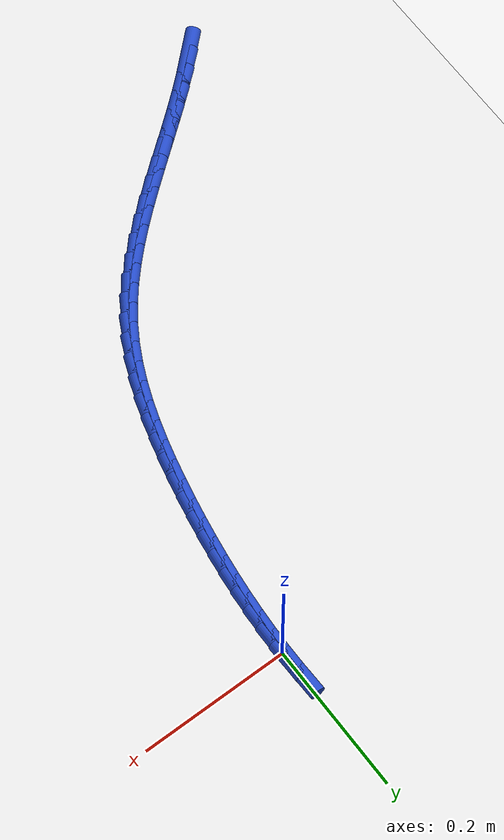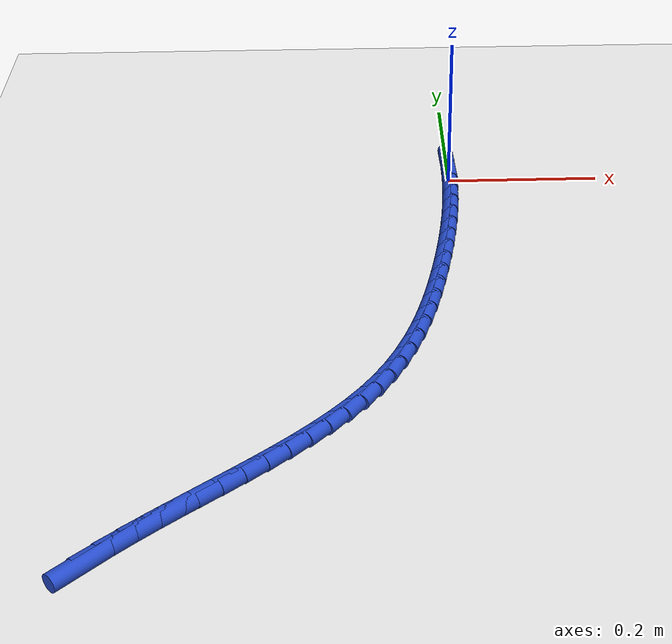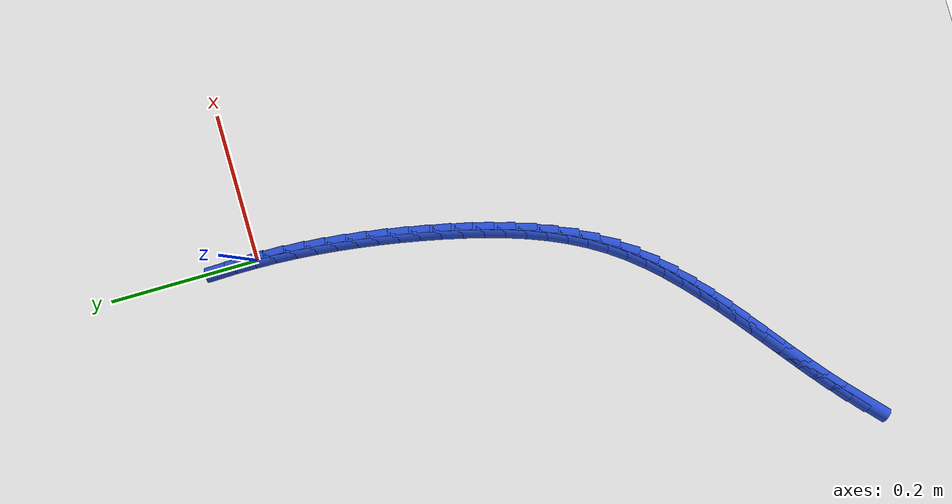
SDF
<sdf version="1.6">
 <world name="default">
  <model name="ground_plane">
   <static>1</static>
   <link name="link">
    <collision name="collision">
     <geometry><plane><normal>0 0 1</normal><size>100 100</size></plane></geometry>
     <surface><friction><ode><mu>100</mu><mu2>50</mu2></ode></friction></surface>
    </collision>
    <visual name="visual">
     <cast_shadows>0</cast_shadows>
     <geometry><plane><normal>0 0 1</normal><size>100 100</size></plane></geometry>
     <material>
      <script><uri>file://media/materials/scripts/gazebo.material</uri><name>Gazebo/WhiteGlow</name></script>
     </material>
    </visual>
   </link>
  </model>
  <model name="line">
   <link name="link_0">
    <pose>3.469446951953614e-18 4.163336342344337e-17 0.01 0 1.57 1.5686046677415935</pose>
    <collision name="collision">
     <geometry><cylinder><radius>0.01</radius><length>0.08</length></cylinder></geometry>
    </collision>
    <visual name="visual">
     <material>
      <script><name>Gazebo/Blue</name><uri>file://media/materials/scripts/gazebo.material</uri></script>
     </material>
     <geometry><cylinder><radius>0.01</radius><length>0.08</length></cylinder></geometry>
    </visual>
   </link>
   <link name="link_1">
    <pose>5.986512938867445e-05 0.027314939085516483 0.01 0 1.57 -1.5446424900478535</pose>
    <collision name="collision">
     <geometry><cylinder><radius>0.01</radius><length>0.08</length></cylinder></geometry>
    </collision>
    <visual name="visual">
     <material>
      <script><name>Gazebo/Blue</name><uri>file://media/materials/scripts/gazebo.material</uri></script>
     </material>
     <geometry><cylinder><radius>0.01</radius><length>0.08</length></cylinder></geometry>
    </visual>
   </link>
   <link name="link_239">
    <pose>-0.39065218091034803 -0.7117710341909513 0.01 0 1.57 0.7491343088224107</pose>
    <collision name="collision">
     <geometry><cylinder><radius>0.01</radius><length>0.08</length></cylinder></geometry>
    </collision>
    <visual name="visual">
     <material>
      <script><name>Gazebo/Blue</name><uri>file://media/materials/scripts/gazebo.material</uri></script>
     </material>
     <geometry><cylinder><radius>0.01</radius><length>0.08</length></cylinder></geometry>
    </visual>
   </link>
   <link name="link_240">
    <pose>-0.3710191961113675 -0.6935127360217694 0.01 0 1.57 0.7182236447536012</pose>
    <collision name="collision">
     <geometry><cylinder><radius>0.01</radius><length>0.08</length></cylinder></geometry>
    </collision>
    <visual name="visual">
     <material>
      <script><name>Gazebo/Blue</name><uri>file://media/materials/scripts/gazebo.material</uri></script>
     </material>
     <geometry><cylinder><radius>0.01</radius><length>0.08</length></cylinder></geometry>
    </visual>
   </link>
   <link name="link_241">
    <pose>-0.3506068581167566 -0.6756737820441842 0.01 0 1.57 0.6936233526174795</pose>
    <collision name="collision">
     <geometry><cylinder><radius>0.01</radius><length>0.08</length></cylinder></geometry>
    </collision>
    <visual name="visual">
     <material>
      <script><name>Gazebo/Blue</name><uri>file://media/materials/scripts/gazebo.material</uri></script>
     </material>
     <geometry><cylinder><radius>0.01</radius><length>0.08</length></cylinder></geometry>
    </visual>
   </link>
   <link name="link_242">
    <pose>-0.3295159666706042 -0.6581378466109801 0.01 0 1.57 0.6772759400904336</pose>
    <collision name="collision">
     <geometry><cylinder><radius>0.01</radius><length>0.08</length></cylinder></geometry>
    </collision>
    <visual name="visual">
     <material>
      <script><name>Gazebo/Blue</name><uri>file://media/materials/scripts/gazebo.material</uri></script>
     </material>
     <geometry><cylinder><radius>0.01</radius><length>0.08</length></cylinder></geometry>
    </visual>
   </link>
   <link name="link_243">
    <pose>-0.307939118586207 -0.6407864821495343 0.01 0 1.57 0.6688574194247194</pose>
    <collision name="collision">
     <geometry><cylinder><radius>0.01</radius><length>0.08</length></cylinder></geometry>
    </collision>
    <visual name="visual">
     <material>
      <script><name>Gazebo/Blue</name><uri>file://media/materials/scripts/gazebo.material</uri></script>
     </material>
     <geometry><cylinder><radius>0.01</radius><length>0.08</length></cylinder></geometry>
    </visual>
   </link>
   <link name="link_244">
    <pose>-0.28607000016990086 -0.6235012159031608 0.01 0 1.57 0.668141272821662</pose>
    <collision name="collision">
     <geometry><cylinder><radius>0.01</radius><length>0.08</length></cylinder></geometry>
    </collision>
    <visual name="visual">
     <material>
      <script><name>Gazebo/Blue</name><uri>file://media/materials/scripts/gazebo.material</uri></script>
     </material>
     <geometry><cylinder><radius>0.01</radius><length>0.08</length></cylinder></geometry>
    </visual>
   </link>
   <link name="link_245">
    <pose>-0.26410229772802446 -0.6061635751151759 0.01 0 1.57 0.6750310239924663</pose>
    <collision name="collision">
     <geometry><cylinder><radius>0.01</radius><length>0.08</length></cylinder></geometry>
    </collision>
    <visual name="visual">
     <material>
      <script><name>Gazebo/Blue</name><uri>file://media/materials/scripts/gazebo.material</uri></script>
     </material>
     <geometry><cylinder><radius>0.01</radius><length>0.08</length></cylinder></geometry>
    </visual>
   </link>
   <link name="link_246">
    <pose>-0.24222969756691431 -0.5886550870288944 0.01 0 1.57 0.6895563960635924</pose>
    <collision name="collision">
     <geometry><cylinder><radius>0.01</radius><length>0.08</length></cylinder></geometry>
    </collision>
    <visual name="visual">
     <material>
      <script><name>Gazebo/Blue</name><uri>file://media/materials/scripts/gazebo.material</uri></script>
     </material>
     <geometry><cylinder><radius>0.01</radius><length>0.08</length></cylinder></geometry>
    </visual>
   </link>
   <link name="link_247">
    <pose>-0.22064588599290702 -0.5708572788876304 0.01 0 1.57 0.7118611678405202</pose>
    <collision name="collision">
     <geometry><cylinder><radius>0.01</radius><length>0.08</length></cylinder></geometry>
    </collision>
    <visual name="visual">
     <material>
      <script><name>Gazebo/Blue</name><uri>file://media/materials/scripts/gazebo.material</uri></script>
     </material>
     <geometry><cylinder><radius>0.01</radius><length>0.08</length></cylinder></geometry>
    </visual>
   </link>
   <link name="link_248">
    <pose>-0.19954454931234117 -0.5526516779347008 0.01 0 1.57 0.7421810424671849</pose>
    <collision name="collision">
     <geometry><cylinder><radius>0.01</radius><length>0.08</length></cylinder></geometry>
    </collision>
    <visual name="visual">
     <material>
      <script><name>Gazebo/Blue</name><uri>file://media/materials/scripts/gazebo.material</uri></script>
     </material>
     <geometry><cylinder><radius>0.01</radius><length>0.08</length></cylinder></geometry>
    </visual>
   </link>
   <link name="link_249">
    <pose>-0.17911937383155271 -0.5339198114134195 0.01 0 1.57 0.7808075391991679</pose>
    <collision name="collision">
     <geometry><cylinder><radius>0.01</radius><length>0.08</length></cylinder></geometry>
    </collision>
    <visual name="visual">
     <material>
      <script><name>Gazebo/Blue</name><uri>file://media/materials/scripts/gazebo.material</uri></script>
     </material>
     <geometry><cylinder><radius>0.01</radius><length>0.08</length></cylinder></geometry>
    </visual>
   </link>
   <link name="link_250">
    <pose>-0.15956404585688014 -0.5145432065671028 0.01 0 1.57 0.8280322426901585</pose>
    <collision name="collision">
     <geometry><cylinder><radius>0.01</radius><length>0.08</length></cylinder></geometry>
    </collision>
    <visual name="visual">
     <material>
      <script><name>Gazebo/Blue</name><uri>file://media/materials/scripts/gazebo.material</uri></script>
     </material>
     <geometry><cylinder><radius>0.01</radius><length>0.08</length></cylinder></geometry>
    </visual>
   </link>
   <link name="link_251">
    <pose>-0.14107225169465948 -0.4944033906390645 0.01 0 1.57 0.8840656025082396</pose>
    <collision name="collision">
     <geometry><cylinder><radius>0.01</radius><length>0.08</length></cylinder></geometry>
    </collision>
    <visual name="visual">
     <material>
      <script><name>Gazebo/Blue</name><uri>file://media/materials/scripts/gazebo.material</uri></script>
     </material>
     <geometry><cylinder><radius>0.01</radius><length>0.08</length></cylinder></geometry>
    </visual>
   </link>
   <link name="link_252">
    <pose>-0.12383767765122908 -0.4733818908726213 0.01 0 1.57 0.9489276221235671</pose>
    <collision name="collision">
     <geometry><cylinder><radius>0.01</radius><length>0.08</length></cylinder></geometry>
    </collision>
    <visual name="visual">
     <material>
      <script><name>Gazebo/Blue</name><uri>file://media/materials/scripts/gazebo.material</uri></script>
     </material>
     <geometry><cylinder><radius>0.01</radius><length>0.08</length></cylinder></geometry>
    </visual>
   </link>
   <link name="link_253">
    <pose>-0.10805401003292524 -0.4513602345110869 0.01 0 1.57 1.0205338090685836</pose>
    <collision name="collision">
     <geometry><cylinder><radius>0.01</radius><length>0.08</length></cylinder></geometry>
    </collision>
    <visual name="visual">
     <material>
      <script><name>Gazebo/Blue</name><uri>file://media/materials/scripts/gazebo.material</uri></script>
     </material>
     <geometry><cylinder><radius>0.01</radius><length>0.08</length></cylinder></geometry>
    </visual>
   </link>
   <link name="link_254">
    <pose>-0.09387643266827413 -0.4282496358397962 0.01 0 1.57 1.0883399657465809</pose>
    <collision name="collision">
     <geometry><cylinder><radius>0.01</radius><length>0.08</length></cylinder></geometry>
    </collision>
    <visual name="visual">
     <material>
      <script><name>Gazebo/Blue</name><uri>file://media/materials/scripts/gazebo.material</uri></script>
     </material>
     <geometry><cylinder><radius>0.01</radius><length>0.08</length></cylinder></geometry>
    </visual>
   </link>
   <link name="link_255">
    <pose>-0.08124329914649292 -0.4041284944472349 0.01 0 1.57 1.1486575966495882</pose>
    <collision name="collision">
     <geometry><cylinder><radius>0.01</radius><length>0.08</length></cylinder></geometry>
    </collision>
    <visual name="visual">
     <material>
      <script><name>Gazebo/Blue</name><uri>file://media/materials/scripts/gazebo.material</uri></script>
     </material>
     <geometry><cylinder><radius>0.01</radius><length>0.08</length></cylinder></geometry>
    </visual>
   </link>
   <link name="link_256">
    <pose>-0.07001712408915757 -0.379133684979784 0.01 0 1.57 1.2015916002075444</pose>
    <collision name="collision">
     <geometry><cylinder><radius>0.01</radius><length>0.08</length></cylinder></geometry>
    </collision>
    <visual name="visual">
     <material>
      <script><name>Gazebo/Blue</name><uri>file://media/materials/scripts/gazebo.material</uri></script>
     </material>
     <geometry><cylinder><radius>0.01</radius><length>0.08</length></cylinder></geometry>
    </visual>
   </link>
   <link name="link_257">
    <pose>-0.060060342040515226 -0.3534021438268345 0.01 0 1.57 1.2474114225496895</pose>
    <collision name="collision">
     <geometry><cylinder><radius>0.01</radius><length>0.08</length></cylinder></geometry>
    </collision>
    <visual name="visual">
     <material>
      <script><name>Gazebo/Blue</name><uri>file://media/materials/scripts/gazebo.material</uri></script>
     </material>
     <geometry><cylinder><radius>0.01</radius><length>0.08</length></cylinder></geometry>
    </visual>
   </link>
   <link name="link_258">
    <pose>-0.05123538754481328 -0.32707080737777805 0.01 0 1.57 1.2864616483616975</pose>
    <collision name="collision">
     <geometry><cylinder><radius>0.01</radius><length>0.08</length></cylinder></geometry>
    </collision>
    <visual name="visual">
     <material>
      <script><name>Gazebo/Blue</name><uri>file://media/materials/scripts/gazebo.material</uri></script>
     </material>
     <geometry><cylinder><radius>0.01</radius><length>0.08</length></cylinder></geometry>
    </visual>
   </link>
   <link name="link_259">
    <pose>-0.04340469514629982 -0.30027661202200834 0.01 0 1.57 1.319097668376893</pose>
    <collision name="collision">
     <geometry><cylinder><radius>0.01</radius><length>0.08</length></cylinder></geometry>
    </collision>
    <visual name="visual">
     <material>
      <script><name>Gazebo/Blue</name><uri>file://media/materials/scripts/gazebo.material</uri></script>
     </material>
     <geometry><cylinder><radius>0.01</radius><length>0.08</length></cylinder></geometry>
    </visual>
   </link>
   <link name="link_260">
    <pose>-0.03643069938922198 -0.2731564941489161 0.01 0 1.57 1.3456403359914586</pose>
    <collision name="collision">
     <geometry><cylinder><radius>0.01</radius><length>0.08</length></cylinder></geometry>
    </collision>
    <visual name="visual">
     <material>
      <script><name>Gazebo/Blue</name><uri>file://media/materials/scripts/gazebo.material</uri></script>
     </material>
     <geometry><cylinder><radius>0.01</radius><length>0.08</length></cylinder></geometry>
    </visual>
   </link>
   <link name="link_261">
    <pose>-0.03017583481782776 -0.2458473901478949 0.01 0 1.57 1.366443225201713</pose>
    <collision name="collision">
     <geometry><cylinder><radius>0.01</radius><length>0.08</length></cylinder></geometry>
    </collision>
    <visual name="visual">
     <material>
      <script><name>Gazebo/Blue</name><uri>file://media/materials/scripts/gazebo.material</uri></script>
     </material>
     <geometry><cylinder><radius>0.01</radius><length>0.08</length></cylinder></geometry>
    </visual>
   </link>
   <link name="link_262">
    <pose>-0.024504919098776615 -0.21848418634557568 0.01 0 1.57 1.384660761122475</pose>
    <collision name="collision">
     <geometry><cylinder><radius>0.01</radius><length>0.08</length></cylinder></geometry>
    </collision>
    <visual name="visual">
     <material>
      <script><name>Gazebo/Blue</name><uri>file://media/materials/scripts/gazebo.material</uri></script>
     </material>
     <geometry><cylinder><radius>0.01</radius><length>0.08</length></cylinder></geometry>
    </visual>
   </link>
   <link name="link_263">
    <pose>-0.019355445799634368 -0.19113925018277636 0.01 0 1.57 1.403803019445624</pose>
    <collision name="collision">
     <geometry><cylinder><radius>0.01</radius><length>0.08</length></cylinder></geometry>
    </collision>
    <visual name="visual">
     <material>
      <script><name>Gazebo/Blue</name><uri>file://media/materials/scripts/gazebo.material</uri></script>
     </material>
     <geometry><cylinder><radius>0.01</radius><length>0.08</length></cylinder></geometry>
    </visual>
   </link>
   <link name="link_264">
    <pose>-0.014749158980694817 -0.16381247326073844 0.01 0 1.57 1.424065348546519</pose>
    <collision name="collision">
     <geometry><cylinder><radius>0.01</radius><length>0.08</length></cylinder></geometry>
    </collision>
    <visual name="visual">
     <material>
      <script><name>Gazebo/Blue</name><uri>file://media/materials/scripts/gazebo.material</uri></script>
     </material>
     <geometry><cylinder><radius>0.01</radius><length>0.08</length></cylinder></geometry>
    </visual>
   </link>
   <link name="link_265">
    <pose>-0.010712516603541854 -0.13649969208331134 0.01 0 1.57 1.4454435558773935</pose>
    <collision name="collision">
     <geometry><cylinder><radius>0.01</radius><length>0.08</length></cylinder></geometry>
    </collision>
    <visual name="visual">
     <material>
      <script><name>Gazebo/Blue</name><uri>file://media/materials/scripts/gazebo.material</uri></script>
     </material>
     <geometry><cylinder><radius>0.01</radius><length>0.08</length></cylinder></geometry>
    </visual>
   </link>
   <link name="link_266">
    <pose>-0.007271976629758851 -0.10919674315434137 0.01 0 1.57 1.467927738123763</pose>
    <collision name="collision">
     <geometry><cylinder><radius>0.01</radius><length>0.08</length></cylinder></geometry>
    </collision>
    <visual name="visual">
     <material>
      <script><name>Gazebo/Blue</name><uri>file://media/materials/scripts/gazebo.material</uri></script>
     </material>
     <geometry><cylinder><radius>0.01</radius><length>0.08</length></cylinder></geometry>
    </visual>
   </link>
   <link name="link_267">
    <pose>-0.004453997020929623 -0.08189946297767797 0.01 0 1.57 1.4915015099555975</pose>
    <collision name="collision">
     <geometry><cylinder><radius>0.01</radius><length>0.08</length></cylinder></geometry>
    </collision>
    <visual name="visual">
     <material>
      <script><name>Gazebo/Blue</name><uri>file://media/materials/scripts/gazebo.material</uri></script>
     </material>
     <geometry><cylinder><radius>0.01</radius><length>0.08</length></cylinder></geometry>
    </visual>
   </link>
   <link name="link_268">
    <pose>-0.0022850357386376653 -0.05460368805716814 0.01 0 1.57 1.516141263321472</pose>
    <collision name="collision">
     <geometry><cylinder><radius>0.01</radius><length>0.08</length></cylinder></geometry>
    </collision>
    <visual name="visual">
     <material>
      <script><name>Gazebo/Blue</name><uri>file://media/materials/scripts/gazebo.material</uri></script>
     </material>
     <geometry><cylinder><radius>0.01</radius><length>0.08</length></cylinder></geometry>
    </visual>
   </link>
   <link name="link_269">
    <pose>-0.0007915507444665572 -0.02730525489665895 0.01 0 1.57 1.541815490316276</pose>
    <collision name="collision">
     <geometry><cylinder><radius>0.01</radius><length>0.08</length></cylinder></geometry>
    </collision>
    <visual name="visual">
     <material>
      <script><name>Gazebo/Blue</name><uri>file://media/materials/scripts/gazebo.material</uri></script>
     </material>
     <geometry><cylinder><radius>0.01</radius><length>0.08</length></cylinder></geometry>
    </visual>
   </link>
   <link name="link_270">
    <pose>6.5052130349130266e-18 1.5959455978986625e-16 0.01 0 1.57 1.568484206959448</pose>
    <collision name="collision">
     <geometry><cylinder><radius>0.01</radius><length>0.08</length></cylinder></geometry>
    </collision>
    <visual name="visual">
     <material>
      <script><name>Gazebo/Blue</name><uri>file://media/materials/scripts/gazebo.material</uri></script>
     </material>
     <geometry><cylinder><radius>0.01</radius><length>0.08</length></cylinder></geometry>
    </visual>
   </link>
  </model>
 </world>
</sdf>
